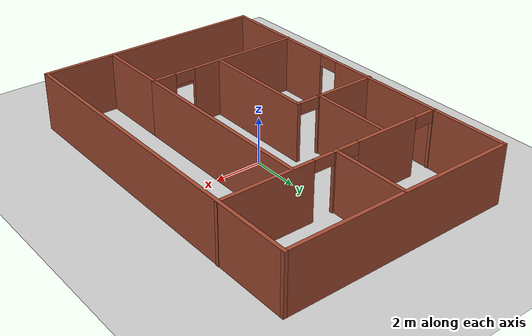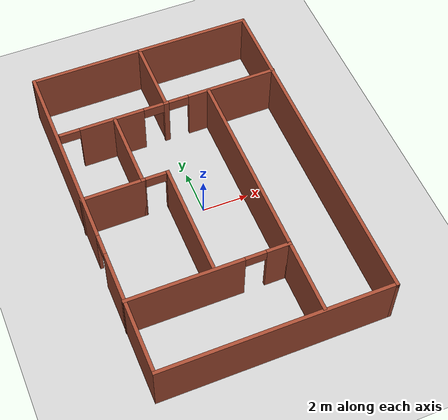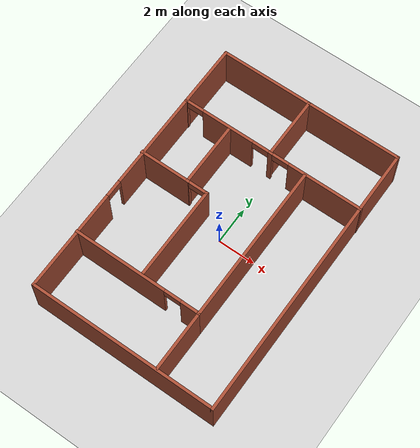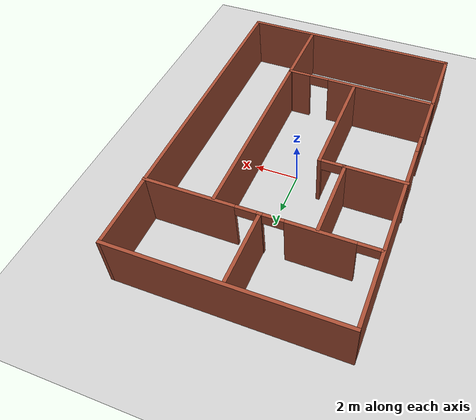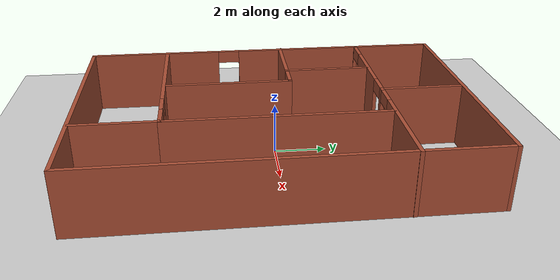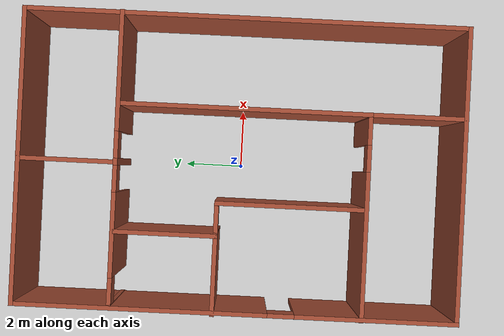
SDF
<sdf version="1.7">
 <world name="default">
  <light name="sun" type="directional">
   <pose>0 0 10 0 -0 0</pose>
   <diffuse>0.8 0.8 0.8 1</diffuse>
   <specular>0.2 0.2 0.2 1</specular>
   <attenuation>
    <range>1000</range>
    <constant>0.9</constant>
    <linear>0.01</linear>
    <quadratic>0.001</quadratic>
   </attenuation>
   <direction>-0.5 0.1 -0.9</direction>
   <spot><inner_angle>0</inner_angle><outer_angle>0</outer_angle><falloff>0</falloff></spot>
  </light>
  <model name="ground_plane">
   <static>1</static>
   <link name="link">
    <collision name="collision">
     <geometry><plane><normal>0 0 1</normal><size>100 100</size></plane></geometry>
     <surface><friction><ode><mu>100</mu><mu2>50</mu2></ode></friction></surface>
    </collision>
    <visual name="visual">
     <cast_shadows>0</cast_shadows>
     <geometry><plane><normal>0 0 1</normal><size>100 100</size></plane></geometry>
     <material>
      <script><uri>file://media/materials/scripts/gazebo.material</uri><name>Gazebo/Grey</name></script>
     </material>
    </visual>
   </link>
  </model>
  <gravity>0 0 -9.8</gravity>
  <magnetic_field>6e-06 2.3e-05 -4.2e-05</magnetic_field>
  <atmosphere type="adiabatic"/>
  <physics type="ode">
   <max_step_size>0.001</max_step_size>
   <real_time_factor>1</real_time_factor>
   <real_time_update_rate>1000</real_time_update_rate>
  </physics>
  <scene><ambient>0.4 0.4 0.4 1</ambient><background>0.7 0.7 0.7 1</background><shadows>1</shadows></scene>
  <spherical_coordinates>
   <surface_model>EARTH_WGS84</surface_model>
   <latitude_deg>0</latitude_deg>
   <longitude_deg>0</longitude_deg>
   <elevation>0</elevation>
   <heading_deg>0</heading_deg>
  </spherical_coordinates>
  <model name="house_2">
   <pose>-0.00613 0.0079 0 0 -0 0</pose>
   <link name="Wall_100">
    <collision name="Wall_100_Collision">
     <geometry><box><size>10 0.15 2.5</size></box></geometry>
     <pose>0 0 1.25 0 -0 0</pose>
    </collision>
    <visual name="Wall_100_Visual">
     <pose>0 0 1.25 0 -0 0</pose>
     <geometry><box><size>10 0.15 2.5</size></box></geometry>
     <material>
      <script><uri>file://media/materials/scripts/gazebo.material</uri><name>Gazebo/Bricks</name></script>
      <ambient>1 1 1 1</ambient>
     </material>
     <meta><layer>0</layer></meta>
    </visual>
    <pose>0.013133 7.425 0 0 -0 3.14159</pose>
   </link>
   <link name="Wall_101">
    <pose>-4.91187 0 0 0 -0 -1.5708</pose>
    <visual name="Wall_101_Visual_0">
     <pose>-3.19477 0 1.25 0 -0 0</pose>
     <geometry><box><size>8.61047 0.15 2.5</size></box></geometry>
     <material>
      <script><uri>file://media/materials/scripts/gazebo.material</uri><name>Gazebo/Bricks</name></script>
      <ambient>1 1 1 1</ambient>
     </material>
     <meta><layer>0</layer></meta>
    </visual>
    <collision name="Wall_101_Collision_0">
     <geometry><box><size>8.61047 0.15 2.5</size></box></geometry>
     <pose>-3.19477 0 1.25 0 -0 0</pose>
    </collision>
    <visual name="Wall_101_Visual_1">
     <pose>4.75523 0 1.25 0 -0 0</pose>
     <geometry><box><size>5.48953 0.15 2.5</size></box></geometry>
     <material>
      <script><uri>file://media/materials/scripts/gazebo.material</uri><name>Gazebo/Bricks</name></script>
      <ambient>1 1 1 1</ambient>
     </material>
     <meta><layer>0</layer></meta>
    </visual>
    <collision name="Wall_101_Collision_1">
     <geometry><box><size>5.48953 0.15 2.5</size></box></geometry>
     <pose>4.75523 0 1.25 0 -0 0</pose>
    </collision>
    <visual name="Wall_101_Visual_2">
     <pose>1.56047 0 2.25 0 -0 0</pose>
     <geometry><box><size>0.9 0.15 0.5</size></box></geometry>
     <material>
      <script><uri>file://media/materials/scripts/gazebo.material</uri><name>Gazebo/Bricks</name></script>
      <ambient>1 1 1 1</ambient>
     </material>
     <meta><layer>0</layer></meta>
    </visual>
    <collision name="Wall_101_Collision_2">
     <geometry><box><size>0.9 0.15 0.5</size></box></geometry>
     <pose>1.56047 0 2.25 0 -0 0</pose>
    </collision>
   </link>
   <link name="Wall_125">
    <pose>-1.50646 -4.25166 0 0 -0 0</pose>
    <visual name="Wall_125_Visual_0">
     <pose>-0.987106 0 1.25 0 -0 0</pose>
     <geometry><box><size>5.02579 0.15 2.5</size></box></geometry>
     <material>
      <script><uri>file://media/materials/scripts/gazebo.material</uri><name>Gazebo/Bricks</name></script>
      <ambient>1 1 1 1</ambient>
     </material>
     <meta><layer>0</layer></meta>
    </visual>
    <collision name="Wall_125_Collision_0">
     <geometry><box><size>5.02579 0.15 2.5</size></box></geometry>
     <pose>-0.987106 0 1.25 0 -0 0</pose>
    </collision>
    <visual name="Wall_125_Visual_1">
     <pose>2.96289 0 1.25 0 -0 0</pose>
     <geometry><box><size>1.07421 0.15 2.5</size></box></geometry>
     <material>
      <script><uri>file://media/materials/scripts/gazebo.material</uri><name>Gazebo/Bricks</name></script>
      <ambient>1 1 1 1</ambient>
     </material>
     <meta><layer>0</layer></meta>
    </visual>
    <collision name="Wall_125_Collision_1">
     <geometry><box><size>1.07421 0.15 2.5</size></box></geometry>
     <pose>2.96289 0 1.25 0 -0 0</pose>
    </collision>
    <visual name="Wall_125_Visual_2">
     <pose>3.41146 0 1.25 0 -0 0</pose>
     <geometry><box><size>0.17709 0.15 2.5</size></box></geometry>
     <material>
      <script><uri>file://media/materials/scripts/gazebo.material</uri><name>Gazebo/Bricks</name></script>
      <ambient>1 1 1 1</ambient>
     </material>
     <meta><layer>0</layer></meta>
    </visual>
    <collision name="Wall_125_Collision_2">
     <geometry><box><size>0.17709 0.15 2.5</size></box></geometry>
     <pose>3.41146 0 1.25 0 -0 0</pose>
    </collision>
    <visual name="Wall_125_Visual_3">
     <pose>1.97435 0 2.25 0 -0 0</pose>
     <geometry><box><size>0.897121 0.15 0.5</size></box></geometry>
     <material>
      <script><uri>file://media/materials/scripts/gazebo.material</uri><name>Gazebo/Bricks</name></script>
      <ambient>1 1 1 1</ambient>
     </material>
     <meta><layer>0</layer></meta>
    </visual>
    <collision name="Wall_125_Collision_3">
     <geometry><box><size>0.897121 0.15 0.5</size></box></geometry>
     <pose>1.97435 0 2.25 0 -0 0</pose>
    </collision>
   </link>
   <link name="Wall_126">
    <collision name="Wall_126_Collision">
     <geometry><box><size>3.25 0.15 2.5</size></box></geometry>
     <pose>0 0 1.25 0 -0 0</pose>
    </collision>
    <visual name="Wall_126_Visual">
     <pose>0 0 1.25 0 -0 0</pose>
     <geometry><box><size>3.25 0.15 2.5</size></box></geometry>
     <material>
      <script><uri>file://media/materials/scripts/gazebo.material</uri><name>Gazebo/Bricks</name></script>
      <ambient>1 1 1 1</ambient>
     </material>
     <meta><layer>0</layer></meta>
    </visual>
    <pose>1.91854 -5.80166 0 0 -0 -1.5708</pose>
   </link>
   <link name="Wall_141">
    <collision name="Wall_141_Collision">
     <geometry><box><size>3.5 0.15 2.5</size></box></geometry>
     <pose>0 0 1.25 0 -0 0</pose>
    </collision>
    <visual name="Wall_141_Visual">
     <pose>0 0 1.25 0 -0 0</pose>
     <geometry><box><size>3.5 0.15 2.5</size></box></geometry>
     <material>
      <script><uri>file://media/materials/scripts/gazebo.material</uri><name>Gazebo/Bricks</name></script>
      <ambient>1 1 1 1</ambient>
     </material>
     <meta><layer>0</layer></meta>
    </visual>
    <pose>-2.35858 2.41309 0 0 -0 -1.5708</pose>
   </link>
   <link name="Wall_142">
    <collision name="Wall_142_Collision">
     <geometry><box><size>2.75 0.15 2.5</size></box></geometry>
     <pose>0 0 1.25 0 -0 0</pose>
    </collision>
    <visual name="Wall_142_Visual">
     <pose>0 0 1.25 0 -0 0</pose>
     <geometry><box><size>2.75 0.15 2.5</size></box></geometry>
     <material>
      <script><uri>file://media/materials/scripts/gazebo.material</uri><name>Gazebo/Bricks</name></script>
      <ambient>1 1 1 1</ambient>
     </material>
     <meta><layer>0</layer></meta>
    </visual>
    <pose>-3.65858 0.738092 0 0 -0 3.14159</pose>
   </link>
   <link name="Wall_144">
    <pose>-1.80858 0.738092 0 0 -0 0</pose>
    <visual name="Wall_144_Visual_0">
     <pose>-0.529697 0 1.25 0 -0 0</pose>
     <geometry><box><size>0.190606 0.15 2.5</size></box></geometry>
     <material>
      <script><uri>file://media/materials/scripts/gazebo.material</uri><name>Gazebo/Bricks</name></script>
      <ambient>1 1 1 1</ambient>
     </material>
     <meta><layer>0</layer></meta>
    </visual>
    <collision name="Wall_144_Collision_0">
     <geometry><box><size>0.190606 0.15 2.5</size></box></geometry>
     <pose>-0.529697 0 1.25 0 -0 0</pose>
    </collision>
    <visual name="Wall_144_Visual_1">
     <pose>0.545303 0 1.25 0 -0 0</pose>
     <geometry><box><size>0.159394 0.15 2.5</size></box></geometry>
     <material>
      <script><uri>file://media/materials/scripts/gazebo.material</uri><name>Gazebo/Bricks</name></script>
      <ambient>1 1 1 1</ambient>
     </material>
     <meta><layer>0</layer></meta>
    </visual>
    <collision name="Wall_144_Collision_1">
     <geometry><box><size>0.159394 0.15 2.5</size></box></geometry>
     <pose>0.545303 0 1.25 0 -0 0</pose>
    </collision>
    <visual name="Wall_144_Visual_2">
     <pose>0.015606 0 2.25 0 -0 0</pose>
     <geometry><box><size>0.9 0.15 0.5</size></box></geometry>
     <material>
      <script><uri>file://media/materials/scripts/gazebo.material</uri><name>Gazebo/Bricks</name></script>
      <ambient>1 1 1 1</ambient>
     </material>
     <meta><layer>0</layer></meta>
    </visual>
    <collision name="Wall_144_Collision_2">
     <geometry><box><size>0.9 0.15 0.5</size></box></geometry>
     <pose>0.015606 0 2.25 0 -0 0</pose>
    </collision>
   </link>
   <link name="Wall_145">
    <collision name="Wall_145_Collision">
     <geometry><box><size>5 0.15 2.5</size></box></geometry>
     <pose>0 0 1.25 0 -0 0</pose>
    </collision>
    <visual name="Wall_145_Visual">
     <pose>0 0 1.25 0 -0 0</pose>
     <geometry><box><size>5 0.15 2.5</size></box></geometry>
     <material>
      <script><uri>file://media/materials/scripts/gazebo.material</uri><name>Gazebo/Bricks</name></script>
      <ambient>1 1 1 1</ambient>
     </material>
     <meta><layer>0</layer></meta>
    </visual>
    <pose>-1.25858 -1.68691 0 0 -0 -1.5708</pose>
   </link>
   <link name="Wall_151">
    <pose>0.033578 4.177 0 0 -0 0</pose>
    <visual name="Wall_151_Visual_0">
     <pose>-4.92155 0 1.25 0 -0 0</pose>
     <geometry><box><size>0.15689 0.15 2.5</size></box></geometry>
     <material>
      <script><uri>file://media/materials/scripts/gazebo.material</uri><name>Gazebo/Bricks</name></script>
      <ambient>1 1 1 1</ambient>
     </material>
     <meta><layer>0</layer></meta>
    </visual>
    <collision name="Wall_151_Collision_0">
     <geometry><box><size>0.15689 0.15 2.5</size></box></geometry>
     <pose>-4.92155 0 1.25 0 -0 0</pose>
    </collision>
    <visual name="Wall_151_Visual_1">
     <pose>-2.51376 0 1.25 0 -0 0</pose>
     <geometry><box><size>2.85869 0.15 2.5</size></box></geometry>
     <material>
      <script><uri>file://media/materials/scripts/gazebo.material</uri><name>Gazebo/Bricks</name></script>
      <ambient>1 1 1 1</ambient>
     </material>
     <meta><layer>0</layer></meta>
    </visual>
    <collision name="Wall_151_Collision_1">
     <geometry><box><size>2.85869 0.15 2.5</size></box></geometry>
     <pose>-2.51376 0 1.25 0 -0 0</pose>
    </collision>
    <visual name="Wall_151_Visual_2">
     <pose>-0.06707 0 1.25 0 -0 0</pose>
     <geometry><box><size>0.234699 0.15 2.5</size></box></geometry>
     <material>
      <script><uri>file://media/materials/scripts/gazebo.material</uri><name>Gazebo/Bricks</name></script>
      <ambient>1 1 1 1</ambient>
     </material>
     <meta><layer>0</layer></meta>
    </visual>
    <collision name="Wall_151_Collision_2">
     <geometry><box><size>0.234699 0.15 2.5</size></box></geometry>
     <pose>-0.06707 0 1.25 0 -0 0</pose>
    </collision>
    <visual name="Wall_151_Visual_3">
     <pose>2.97514 0 1.25 0 -0 0</pose>
     <geometry><box><size>4.04972 0.15 2.5</size></box></geometry>
     <material>
      <script><uri>file://media/materials/scripts/gazebo.material</uri><name>Gazebo/Bricks</name></script>
      <ambient>1 1 1 1</ambient>
     </material>
     <meta><layer>0</layer></meta>
    </visual>
    <collision name="Wall_151_Collision_3">
     <geometry><box><size>4.04972 0.15 2.5</size></box></geometry>
     <pose>2.97514 0 1.25 0 -0 0</pose>
    </collision>
    <visual name="Wall_151_Visual_4">
     <pose>-4.39311 0 2.25 0 -0 0</pose>
     <geometry><box><size>0.9 0.15 0.5</size></box></geometry>
     <material>
      <script><uri>file://media/materials/scripts/gazebo.material</uri><name>Gazebo/Bricks</name></script>
      <ambient>1 1 1 1</ambient>
     </material>
     <meta><layer>0</layer></meta>
    </visual>
    <collision name="Wall_151_Collision_4">
     <geometry><box><size>0.9 0.15 0.5</size></box></geometry>
     <pose>-4.39311 0 2.25 0 -0 0</pose>
    </collision>
    <visual name="Wall_151_Visual_5">
     <pose>-0.634419 0 2.25 0 -0 0</pose>
     <geometry><box><size>0.9 0.15 0.5</size></box></geometry>
     <material>
      <script><uri>file://media/materials/scripts/gazebo.material</uri><name>Gazebo/Bricks</name></script>
      <ambient>1 1 1 1</ambient>
     </material>
     <meta><layer>0</layer></meta>
    </visual>
    <collision name="Wall_151_Collision_5">
     <geometry><box><size>0.9 0.15 0.5</size></box></geometry>
     <pose>-0.634419 0 2.25 0 -0 0</pose>
    </collision>
    <visual name="Wall_151_Visual_6">
     <pose>0.50028 0 2.25 0 -0 0</pose>
     <geometry><box><size>0.9 0.15 0.5</size></box></geometry>
     <material>
      <script><uri>file://media/materials/scripts/gazebo.material</uri><name>Gazebo/Bricks</name></script>
      <ambient>1 1 1 1</ambient>
     </material>
     <meta><layer>0</layer></meta>
    </visual>
    <collision name="Wall_151_Collision_6">
     <geometry><box><size>0.9 0.15 0.5</size></box></geometry>
     <pose>0.50028 0 2.25 0 -0 0</pose>
    </collision>
   </link>
   <link name="Wall_153">
    <collision name="Wall_153_Collision">
     <geometry><box><size>3.25 0.15 2.5</size></box></geometry>
     <pose>0 0 1.25 0 -0 0</pose>
    </collision>
    <visual name="Wall_153_Visual">
     <pose>0 0 1.25 0 -0 0</pose>
     <geometry><box><size>3.25 0.15 2.5</size></box></geometry>
     <material>
      <script><uri>file://media/materials/scripts/gazebo.material</uri><name>Gazebo/Bricks</name></script>
      <ambient>1 1 1 1</ambient>
     </material>
     <meta><layer>0</layer></meta>
    </visual>
    <pose>-0.051222 5.8538 0 0 -0 -1.5708</pose>
   </link>
   <link name="Wall_155">
    <collision name="Wall_155_Collision">
     <geometry><box><size>8.5 0.15 2.5</size></box></geometry>
     <pose>0 0 1.25 0 -0 0</pose>
    </collision>
    <visual name="Wall_155_Visual">
     <pose>0 0 1.25 0 -0 0</pose>
     <geometry><box><size>8.5 0.15 2.5</size></box></geometry>
     <material>
      <script><uri>file://media/materials/scripts/gazebo.material</uri><name>Gazebo/Bricks</name></script>
      <ambient>1 1 1 1</ambient>
     </material>
     <meta><layer>0</layer></meta>
    </visual>
    <pose>1.91854 -0.076655 0 0 -0 1.5708</pose>
   </link>
   <link name="Wall_96">
    <collision name="Wall_96_Collision">
     <geometry><box><size>10 0.15 2.5</size></box></geometry>
     <pose>0 0 1.25 0 -0 0</pose>
    </collision>
    <visual name="Wall_96_Visual">
     <pose>0 0 1.25 0 -0 0</pose>
     <geometry><box><size>10 0.15 2.5</size></box></geometry>
     <material>
      <script><uri>file://media/materials/scripts/gazebo.material</uri><name>Gazebo/Bricks</name></script>
      <ambient>1 1 1 1</ambient>
     </material>
     <meta><layer>0</layer></meta>
    </visual>
    <pose>0.013133 -7.425 0 0 -0 0</pose>
   </link>
   <link name="Wall_98">
    <collision name="Wall_98_Collision">
     <geometry><box><size>15 0.15 2.5</size></box></geometry>
     <pose>0 0 1.25 0 -0 0</pose>
    </collision>
    <visual name="Wall_98_Visual">
     <pose>0 0 1.25 0 -0 0</pose>
     <geometry><box><size>15 0.15 2.5</size></box></geometry>
     <material>
      <script><uri>file://media/materials/scripts/gazebo.material</uri><name>Gazebo/Bricks</name></script>
      <ambient>1 1 1 1</ambient>
     </material>
     <meta><layer>0</layer></meta>
    </visual>
    <pose>4.93813 0 0 0 -0 1.5708</pose>
   </link>
   <static>1</static>
  </model>
 </world>
</sdf>
